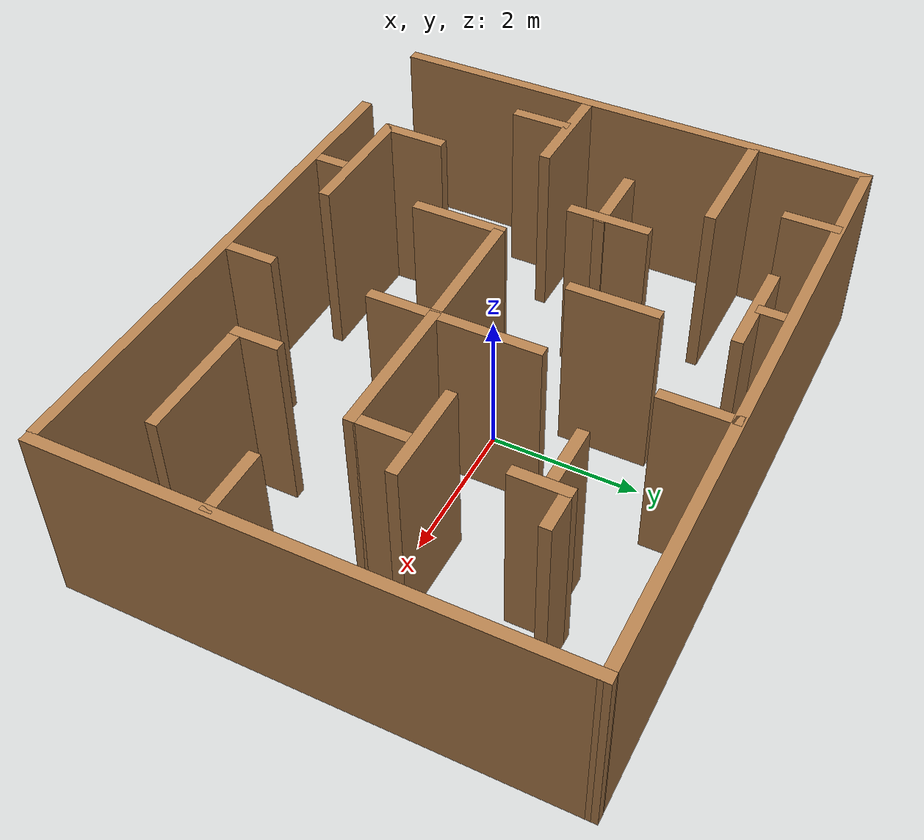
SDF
<?xml version='1.0'?>
<sdf version='1.7'>
  <model name='mapa'>
    <pose>0.046 -0.024855 0 0 -0 0</pose>
    <link name='Wall_11'>
      <collision name='Wall_11_Collision'>
        <geometry>
          <box>
            <size>0.5 0.15 2.5</size>
          </box>
        </geometry>
        <pose>0 0 1.25 0 -0 0</pose>
      </collision>
      <visual name='Wall_11_Visual'>
        <pose>0 0 1.25 0 -0 0</pose>
        <geometry>
          <box>
            <size>0.5 0.15 2.5</size>
          </box>
        </geometry>
        <material>
          <script>
            <uri>file://media/materials/scripts/gazebo.material</uri>
            <name>Gazebo/Wood</name>
          </script>
          <ambient>1 1 1 1</ambient>
        </material>
        <meta>
          <layer>0</layer>
        </meta>
      </visual>
      <pose>-1.481 -3.06814 0 0 -0 1.5708</pose>
    </link>
    <link name='Wall_13'>
      <collision name='Wall_13_Collision'>
        <geometry>
          <box>
            <size>1.75 0.15 2.5</size>
          </box>
        </geometry>
        <pose>0 0 1.25 0 -0 0</pose>
      </collision>
      <visual name='Wall_13_Visual'>
        <pose>0 0 1.25 0 -0 0</pose>
        <geometry>
          <box>
            <size>1.75 0.15 2.5</size>
          </box>
        </geometry>
        <material>
          <script>
            <uri>file://media/materials/scripts/gazebo.material</uri>
            <name>Gazebo/Wood</name>
          </script>
          <ambient>1 1 1 1</ambient>
        </material>
        <meta>
          <layer>0</layer>
        </meta>
      </visual>
      <pose>-1.675 -2.76315 0 0 -0 3.14159</pose>
    </link>
    <link name='Wall_14'>
      <collision name='Wall_14_Collision'>
        <geometry>
          <box>
            <size>0.91 0.15 2.5</size>
          </box>
        </geometry>
        <pose>0 0 1.25 0 -0 0</pose>
      </collision>
      <visual name='Wall_14_Visual'>
        <pose>0 0 1.25 0 -0 0</pose>
        <geometry>
          <box>
            <size>0.91 0.15 2.5</size>
          </box>
        </geometry>
        <material>
          <script>
            <uri>file://media/materials/scripts/gazebo.material</uri>
            <name>Gazebo/Wood</name>
          </script>
          <ambient>1 1 1 1</ambient>
        </material>
        <meta>
          <layer>0</layer>
        </meta>
      </visual>
      <pose>-2.475 -2.38314 0 0 -0 1.5708</pose>
    </link>
    <link name='Wall_16'>
      <collision name='Wall_16_Collision'>
        <geometry>
          <box>
            <size>0.69 0.15 2.5</size>
          </box>
        </geometry>
        <pose>0 0 1.25 0 -0 0</pose>
      </collision>
      <visual name='Wall_16_Visual'>
        <pose>0 0 1.25 0 -0 0</pose>
        <geometry>
          <box>
            <size>0.69 0.15 2.5</size>
          </box>
        </geometry>
        <material>
          <script>
            <uri>file://media/materials/scripts/gazebo.material</uri>
            <name>Gazebo/Wood</name>
          </script>
          <ambient>1 1 1 1</ambient>
        </material>
        <meta>
          <layer>0</layer>
        </meta>
      </visual>
      <pose>0.6 -2.95015 0 0 -0 1.5708</pose>
    </link>
    <link name='Wall_18'>
      <collision name='Wall_18_Collision'>
        <geometry>
          <box>
            <size>1.73 0.15 2.5</size>
          </box>
        </geometry>
        <pose>0 0 1.25 0 -0 0</pose>
      </collision>
      <visual name='Wall_18_Visual'>
        <pose>0 0 1.25 0 -0 0</pose>
        <geometry>
          <box>
            <size>1.73 0.15 2.5</size>
          </box>
        </geometry>
        <material>
          <script>
            <uri>file://media/materials/scripts/gazebo.material</uri>
            <name>Gazebo/Wood</name>
          </script>
          <ambient>1 1 1 1</ambient>
        </material>
        <meta>
          <layer>0</layer>
        </meta>
      </visual>
      <pose>2.646 -2.28315 0 0 -0 3.14159</pose>
    </link>
    <link name='Wall_2'>
      <collision name='Wall_2_Collision'>
        <geometry>
          <box>
            <size>7.05 0.15 2.5</size>
          </box>
        </geometry>
        <pose>0 0 1.25 0 -0 0</pose>
      </collision>
      <visual name='Wall_2_Visual'>
        <pose>0 0 1.25 0 -0 0</pose>
        <geometry>
          <box>
            <size>7.05 0.15 2.5</size>
          </box>
        </geometry>
        <material>
          <script>
            <uri>file://media/materials/scripts/gazebo.material</uri>
            <name>Gazebo/Wood</name>
          </script>
          <ambient>1 1 1 1</ambient>
        </material>
        <meta>
          <layer>0</layer>
        </meta>
      </visual>
      <pose>0.655 -3.32614 0 0 -0 0</pose>
    </link>
    <link name='Wall_22'>
      <collision name='Wall_22_Collision'>
        <geometry>
          <box>
            <size>0.65 0.15 2.5</size>
          </box>
        </geometry>
        <pose>0 0 1.25 0 -0 0</pose>
      </collision>
      <visual name='Wall_22_Visual'>
        <pose>0 0 1.25 0 -0 0</pose>
        <geometry>
          <box>
            <size>0.65 0.15 2.5</size>
          </box>
        </geometry>
        <material>
          <script>
            <uri>file://media/materials/scripts/gazebo.material</uri>
            <name>Gazebo/Wood</name>
          </script>
          <ambient>1 1 1 1</ambient>
        </material>
        <meta>
          <layer>0</layer>
        </meta>
      </visual>
      <pose>1.856 -2.03315 0 0 -0 1.5708</pose>
    </link>
    <link name='Wall_30'>
      <collision name='Wall_30_Collision'>
        <geometry>
          <box>
            <size>0.91 0.15 2.5</size>
          </box>
        </geometry>
        <pose>0 0 1.25 0 -0 0</pose>
      </collision>
      <visual name='Wall_30_Visual'>
        <pose>0 0 1.25 0 -0 0</pose>
        <geometry>
          <box>
            <size>0.91 0.15 2.5</size>
          </box>
        </geometry>
        <material>
          <script>
            <uri>file://media/materials/scripts/gazebo.material</uri>
            <name>Gazebo/Wood</name>
          </script>
          <ambient>1 1 1 1</ambient>
        </material>
        <meta>
          <layer>0</layer>
        </meta>
      </visual>
      <pose>3.811 -1.05915 0 0 -0 3.14159</pose>
    </link>
    <link name='Wall_32'>
      <collision name='Wall_32_Collision'>
        <geometry>
          <box>
            <size>1.44 0.15 2.5</size>
          </box>
        </geometry>
        <pose>0 0 1.25 0 -0 0</pose>
      </collision>
      <visual name='Wall_32_Visual'>
        <pose>0 0 1.25 0 -0 0</pose>
        <geometry>
          <box>
            <size>1.44 0.15 2.5</size>
          </box>
        </geometry>
        <material>
          <script>
            <uri>file://media/materials/scripts/gazebo.material</uri>
            <name>Gazebo/Wood</name>
          </script>
          <ambient>1 1 1 1</ambient>
        </material>
        <meta>
          <layer>0</layer>
        </meta>
      </visual>
      <pose>-3.512 -0.602145 0 0 -0 0</pose>
    </link>
    <link name='Wall_35'>
      <collision name='Wall_35_Collision'>
        <geometry>
          <box>
            <size>0.8 0.15 2.5</size>
          </box>
        </geometry>
        <pose>0 0 1.25 0 -0 0</pose>
      </collision>
      <visual name='Wall_35_Visual'>
        <pose>0 0 1.25 0 -0 0</pose>
        <geometry>
          <box>
            <size>0.8 0.15 2.5</size>
          </box>
        </geometry>
        <material>
          <script>
            <uri>file://media/materials/scripts/gazebo.material</uri>
            <name>Gazebo/Wood</name>
          </script>
          <ambient>1 1 1 1</ambient>
        </material>
        <meta>
          <layer>0</layer>
        </meta>
      </visual>
      <pose>-3.585 -1.00714 0 0 -0 -1.5708</pose>
    </link>
    <link name='Wall_38'>
      <collision name='Wall_38_Collision'>
        <geometry>
          <box>
            <size>1.25654 0.15 2.5</size>
          </box>
        </geometry>
        <pose>0 0 1.25 0 -0 0</pose>
      </collision>
      <visual name='Wall_38_Visual'>
        <pose>0 0 1.25 0 -0 0</pose>
        <geometry>
          <box>
            <size>1.25654 0.15 2.5</size>
          </box>
        </geometry>
        <material>
          <script>
            <uri>file://media/materials/scripts/gazebo.material</uri>
            <name>Gazebo/Wood</name>
          </script>
          <ambient>1 1 1 1</ambient>
        </material>
        <meta>
          <layer>0</layer>
        </meta>
      </visual>
      <pose>-1.149 -1.00265 0 0 -0 -1.5708</pose>
    </link>
    <link name='Wall_4'>
      <collision name='Wall_4_Collision'>
        <geometry>
          <box>
            <size>6.78863 0.15 2.5</size>
          </box>
        </geometry>
        <pose>0 0 1.25 0 -0 0</pose>
      </collision>
      <visual name='Wall_4_Visual'>
        <pose>0 0 1.25 0 -0 0</pose>
        <geometry>
          <box>
            <size>6.78863 0.15 2.5</size>
          </box>
        </geometry>
        <material>
          <script>
            <uri>file://media/materials/scripts/gazebo.material</uri>
            <name>Gazebo/Wood</name>
          </script>
          <ambient>1 1 1 1</ambient>
        </material>
        <meta>
          <layer>0</layer>
        </meta>
      </visual>
      <pose>4.248 0.006355 0 0 -0 -1.5708</pose>
    </link>
    <link name='Wall_42'>
      <collision name='Wall_42_Collision'>
        <geometry>
          <box>
            <size>0.946538 0.15 2.5</size>
          </box>
        </geometry>
        <pose>0 0 1.25 0 -0 0</pose>
      </collision>
      <visual name='Wall_42_Visual'>
        <pose>0 0 1.25 0 -0 0</pose>
        <geometry>
          <box>
            <size>0.946538 0.15 2.5</size>
          </box>
        </geometry>
        <material>
          <script>
            <uri>file://media/materials/scripts/gazebo.material</uri>
            <name>Gazebo/Wood</name>
          </script>
          <ambient>1 1 1 1</ambient>
        </material>
        <meta>
          <layer>0</layer>
        </meta>
      </visual>
      <pose>0.6 -0.821645 0 0 -0 -1.5708</pose>
    </link>
    <link name='Wall_53'>
      <collision name='Wall_53_Collision'>
        <geometry>
          <box>
            <size>1.35 0.15 2.5</size>
          </box>
        </geometry>
        <pose>0 0 1.25 0 -0 0</pose>
      </collision>
      <visual name='Wall_53_Visual'>
        <pose>0 0 1.25 0 -0 0</pose>
        <geometry>
          <box>
            <size>1.35 0.15 2.5</size>
          </box>
        </geometry>
        <material>
          <script>
            <uri>file://media/materials/scripts/gazebo.material</uri>
            <name>Gazebo/Wood</name>
          </script>
          <ambient>1 1 1 1</ambient>
        </material>
        <meta>
          <layer>0</layer>
        </meta>
      </visual>
      <pose>2.303 0.354855 0 0 -0 3.14159</pose>
    </link>
    <link name='Wall_55'>
      <collision name='Wall_55_Collision'>
        <geometry>
          <box>
            <size>1.49346 0.15 2.5</size>
          </box>
        </geometry>
        <pose>0 0 1.25 0 -0 0</pose>
      </collision>
      <visual name='Wall_55_Visual'>
        <pose>0 0 1.25 0 -0 0</pose>
        <geometry>
          <box>
            <size>1.49346 0.15 2.5</size>
          </box>
        </geometry>
        <material>
          <script>
            <uri>file://media/materials/scripts/gazebo.material</uri>
            <name>Gazebo/Wood</name>
          </script>
          <ambient>1 1 1 1</ambient>
        </material>
        <meta>
          <layer>0</layer>
        </meta>
      </visual>
      <pose>0.6 0.248355 0 0 -0 1.5708</pose>
    </link>
    <link name='Wall_57'>
      <collision name='Wall_57_Collision'>
        <geometry>
          <box>
            <size>1.1 0.15 2.5</size>
          </box>
        </geometry>
        <pose>0 0 1.25 0 -0 0</pose>
      </collision>
      <visual name='Wall_57_Visual'>
        <pose>0 0 1.25 0 -0 0</pose>
        <geometry>
          <box>
            <size>1.1 0.15 2.5</size>
          </box>
        </geometry>
        <material>
          <script>
            <uri>file://media/materials/scripts/gazebo.material</uri>
            <name>Gazebo/Wood</name>
          </script>
          <ambient>1 1 1 1</ambient>
        </material>
        <meta>
          <layer>0</layer>
        </meta>
      </visual>
      <pose>-1.949 0.685855 0 0 -0 -1.5708</pose>
    </link>
    <link name='Wall_61'>
      <collision name='Wall_61_Collision'>
        <geometry>
          <box>
            <size>1 0.15 2.5</size>
          </box>
        </geometry>
        <pose>0 0 1.25 0 -0 0</pose>
      </collision>
      <visual name='Wall_61_Visual'>
        <pose>0 0 1.25 0 -0 0</pose>
        <geometry>
          <box>
            <size>1 0.15 2.5</size>
          </box>
        </geometry>
        <material>
          <script>
            <uri>file://media/materials/scripts/gazebo.material</uri>
            <name>Gazebo/Wood</name>
          </script>
          <ambient>1 1 1 1</ambient>
        </material>
        <meta>
          <layer>0</layer>
        </meta>
      </visual>
      <pose>-2.349 0.583855 0 0 -0 0</pose>
    </link>
    <link name='Wall_65'>
      <collision name='Wall_65_Collision'>
        <geometry>
          <box>
            <size>1.2 0.15 2.5</size>
          </box>
        </geometry>
        <pose>0 0 1.25 0 -0 0</pose>
      </collision>
      <visual name='Wall_65_Visual'>
        <pose>0 0 1.25 0 -0 0</pose>
        <geometry>
          <box>
            <size>1.2 0.15 2.5</size>
          </box>
        </geometry>
        <material>
          <script>
            <uri>file://media/materials/scripts/gazebo.material</uri>
            <name>Gazebo/Wood</name>
          </script>
          <ambient>1 1 1 1</ambient>
        </material>
        <meta>
          <layer>0</layer>
        </meta>
      </visual>
      <pose>-0.564 1.34085 0 0 -0 1.5708</pose>
    </link>
    <link name='Wall_67'>
      <collision name='Wall_67_Collision'>
        <geometry>
          <box>
            <size>1.75 0.15 2.5</size>
          </box>
        </geometry>
        <pose>0 0 1.25 0 -0 0</pose>
      </collision>
      <visual name='Wall_67_Visual'>
        <pose>0 0 1.25 0 -0 0</pose>
        <geometry>
          <box>
            <size>1.75 0.15 2.5</size>
          </box>
        </geometry>
        <material>
          <script>
            <uri>file://media/materials/scripts/gazebo.material</uri>
            <name>Gazebo/Wood</name>
          </script>
          <ambient>1 1 1 1</ambient>
        </material>
        <meta>
          <layer>0</layer>
        </meta>
      </visual>
      <pose>-3.417 1.79385 0 0 -0 3.14159</pose>
    </link>
    <link name='Wall_69'>
      <collision name='Wall_69_Collision'>
        <geometry>
          <box>
            <size>0.75 0.15 2.5</size>
          </box>
        </geometry>
        <pose>0 0 1.25 0 -0 0</pose>
      </collision>
      <visual name='Wall_69_Visual'>
        <pose>0 0 1.25 0 -0 0</pose>
        <geometry>
          <box>
            <size>0.75 0.15 2.5</size>
          </box>
        </geometry>
        <material>
          <script>
            <uri>file://media/materials/scripts/gazebo.material</uri>
            <name>Gazebo/Wood</name>
          </script>
          <ambient>1 1 1 1</ambient>
        </material>
        <meta>
          <layer>0</layer>
        </meta>
      </visual>
      <pose>2.383 1.78686 0 0 -0 -1.5708</pose>
    </link>
    <link name='Wall_7'>
      <collision name='Wall_7_Collision'>
        <geometry>
          <box>
            <size>6.73863 0.15 2.5</size>
          </box>
        </geometry>
        <pose>0 0 1.25 0 -0 0</pose>
      </collision>
      <visual name='Wall_7_Visual'>
        <pose>0 0 1.25 0 -0 0</pose>
        <geometry>
          <box>
            <size>6.73863 0.15 2.5</size>
          </box>
        </geometry>
        <material>
          <script>
            <uri>file://media/materials/scripts/gazebo.material</uri>
            <name>Gazebo/Wood</name>
          </script>
          <ambient>1 1 1 1</ambient>
        </material>
        <meta>
          <layer>0</layer>
        </meta>
      </visual>
      <pose>-4.248 -0.001645 0 0 -0 -1.5708</pose>
    </link>
    <link name='Wall_74'>
      <collision name='Wall_74_Collision'>
        <geometry>
          <box>
            <size>0.63 0.15 2.5</size>
          </box>
        </geometry>
        <pose>0 0 1.25 0 -0 0</pose>
      </collision>
      <visual name='Wall_74_Visual'>
        <pose>0 0 1.25 0 -0 0</pose>
        <geometry>
          <box>
            <size>0.63 0.15 2.5</size>
          </box>
        </geometry>
        <material>
          <script>
            <uri>file://media/materials/scripts/gazebo.material</uri>
            <name>Gazebo/Wood</name>
          </script>
          <ambient>1 1 1 1</ambient>
        </material>
        <meta>
          <layer>0</layer>
        </meta>
      </visual>
      <pose>2.623 2.08685 0 0 -0 0</pose>
    </link>
    <link name='Wall_76'>
      <collision name='Wall_76_Collision'>
        <geometry>
          <box>
            <size>0.8 0.15 2.5</size>
          </box>
        </geometry>
        <pose>0 0 1.25 0 -0 0</pose>
      </collision>
      <visual name='Wall_76_Visual'>
        <pose>0 0 1.25 0 -0 0</pose>
        <geometry>
          <box>
            <size>0.8 0.15 2.5</size>
          </box>
        </geometry>
        <material>
          <script>
            <uri>file://media/materials/scripts/gazebo.material</uri>
            <name>Gazebo/Wood</name>
          </script>
          <ambient>1 1 1 1</ambient>
        </material>
        <meta>
          <layer>0</layer>
        </meta>
      </visual>
      <pose>1.919 1.87586 0 0 -0 0</pose>
    </link>
    <link name='Wall_78'>
      <collision name='Wall_78_Collision'>
        <geometry>
          <box>
            <size>0.75 0.15 2.5</size>
          </box>
        </geometry>
        <pose>0 0 1.25 0 -0 0</pose>
      </collision>
      <visual name='Wall_78_Visual'>
        <pose>0 0 1.25 0 -0 0</pose>
        <geometry>
          <box>
            <size>0.75 0.15 2.5</size>
          </box>
        </geometry>
        <material>
          <script>
            <uri>file://media/materials/scripts/gazebo.material</uri>
            <name>Gazebo/Wood</name>
          </script>
          <ambient>1 1 1 1</ambient>
        </material>
        <meta>
          <layer>0</layer>
        </meta>
      </visual>
      <pose>-3.023 2.95785 0 0 -0 1.5708</pose>
    </link>
    <link name='Wall_86'>
      <collision name='Wall_86_Collision'>
        <geometry>
          <box>
            <size>1 0.15 2.5</size>
          </box>
        </geometry>
        <pose>0 0 1.25 0 -0 0</pose>
      </collision>
      <visual name='Wall_86_Visual'>
        <pose>0 0 1.25 0 -0 0</pose>
        <geometry>
          <box>
            <size>1 0.15 2.5</size>
          </box>
        </geometry>
        <material>
          <script>
            <uri>file://media/materials/scripts/gazebo.material</uri>
            <name>Gazebo/Wood</name>
          </script>
          <ambient>1 1 1 1</ambient>
        </material>
        <meta>
          <layer>0</layer>
        </meta>
      </visual>
      <pose>0.649 2.85886 0 0 -0 1.5708</pose>
    </link>
    <link name='Wall_88'>
      <collision name='Wall_88_Collision'>
        <geometry>
          <box>
            <size>1.32 0.15 2.5</size>
          </box>
        </geometry>
        <pose>0 0 1.25 0 -0 0</pose>
      </collision>
      <visual name='Wall_88_Visual'>
        <pose>0 0 1.25 0 -0 0</pose>
        <geometry>
          <box>
            <size>1.32 0.15 2.5</size>
          </box>
        </geometry>
        <material>
          <script>
            <uri>file://media/materials/scripts/gazebo.material</uri>
            <name>Gazebo/Wood</name>
          </script>
          <ambient>1 1 1 1</ambient>
        </material>
        <meta>
          <layer>0</layer>
        </meta>
      </visual>
      <pose>-1.177 2.86686 0 0 -0 0</pose>
    </link>
    <link name='Wall_9'>
      <collision name='Wall_9_Collision'>
        <geometry>
          <box>
            <size>8.64601 0.15 2.5</size>
          </box>
        </geometry>
        <pose>0 0 1.25 0 -0 0</pose>
      </collision>
      <visual name='Wall_9_Visual'>
        <pose>0 0 1.25 0 -0 0</pose>
        <geometry>
          <box>
            <size>8.64601 0.15 2.5</size>
          </box>
        </geometry>
        <material>
          <script>
            <uri>file://media/materials/scripts/gazebo.material</uri>
            <name>Gazebo/Wood</name>
          </script>
          <ambient>1 1 1 1</ambient>
        </material>
        <meta>
          <layer>0</layer>
        </meta>
      </visual>
      <pose>-0 3.30936 0 0 -0 0.003884</pose>
    </link>
    <link name='Wall_91'>
      <collision name='Wall_91_Collision'>
        <geometry>
          <box>
            <size>0.5 0.15 2.5</size>
          </box>
        </geometry>
        <pose>0 0 1.25 0 -0 0</pose>
      </collision>
      <visual name='Wall_91_Visual'>
        <pose>0 0 1.25 0 -0 0</pose>
        <geometry>
          <box>
            <size>0.5 0.15 2.5</size>
          </box>
        </geometry>
        <material>
          <script>
            <uri>file://media/materials/scripts/gazebo.material</uri>
            <name>Gazebo/Wood</name>
          </script>
          <ambient>1 1 1 1</ambient>
        </material>
        <meta>
          <layer>0</layer>
        </meta>
      </visual>
      <pose>-1.167 3.12586 0 0 -0 -1.5708</pose>
    </link>
    <link name='Wall_96'>
      <collision name='Wall_96_Collision'>
        <geometry>
          <box>
            <size>1.89919 0.15 2.5</size>
          </box>
        </geometry>
        <pose>0 0 1.25 0 -0 0</pose>
      </collision>
      <visual name='Wall_96_Visual'>
        <pose>0 0 1.25 0 -0 0</pose>
        <geometry>
          <box>
            <size>1.89919 0.15 2.5</size>
          </box>
        </geometry>
        <material>
          <script>
            <uri>file://media/materials/scripts/gazebo.material</uri>
            <name>Gazebo/Wood</name>
          </script>
          <ambient>1 1 1 1</ambient>
        </material>
        <meta>
          <layer>0</layer>
        </meta>
      </visual>
      <pose>-0.2745 -0.436145 0 0 -0 -3.12673</pose>
    </link>
    <link name='Wall_98'>
      <collision name='Wall_98_Collision'>
        <geometry>
          <box>
            <size>2 0.15 2.5</size>
          </box>
        </geometry>
        <pose>0 0 1.25 0 -0 0</pose>
      </collision>
      <visual name='Wall_98_Visual'>
        <pose>0 0 1.25 0 -0 0</pose>
        <geometry>
          <box>
            <size>2 0.15 2.5</size>
          </box>
        </geometry>
        <material>
          <script>
            <uri>file://media/materials/scripts/gazebo.material</uri>
            <name>Gazebo/Wood</name>
          </script>
          <ambient>1 1 1 1</ambient>
        </material>
        <meta>
          <layer>0</layer>
        </meta>
      </visual>
      <pose>1.525 -0.423145 0 0 -0 0</pose>
    </link>
    <link name='Wall_99'>
      <collision name='Wall_99_Collision'>
        <geometry>
          <box>
            <size>0.78 0.15 2.5</size>
          </box>
        </geometry>
        <pose>0 0 1.25 0 -0 0</pose>
      </collision>
      <visual name='Wall_99_Visual'>
        <pose>0 0 1.25 0 -0 0</pose>
        <geometry>
          <box>
            <size>0.78 0.15 2.5</size>
          </box>
        </geometry>
        <material>
          <script>
            <uri>file://media/materials/scripts/gazebo.material</uri>
            <name>Gazebo/Wood</name>
          </script>
          <ambient>1 1 1 1</ambient>
        </material>
        <meta>
          <layer>0</layer>
        </meta>
      </visual>
      <pose>2.45 -0.108145 0 0 -0 1.5708</pose>
    </link>
    <static>1</static>
  </model>
</sdf>
